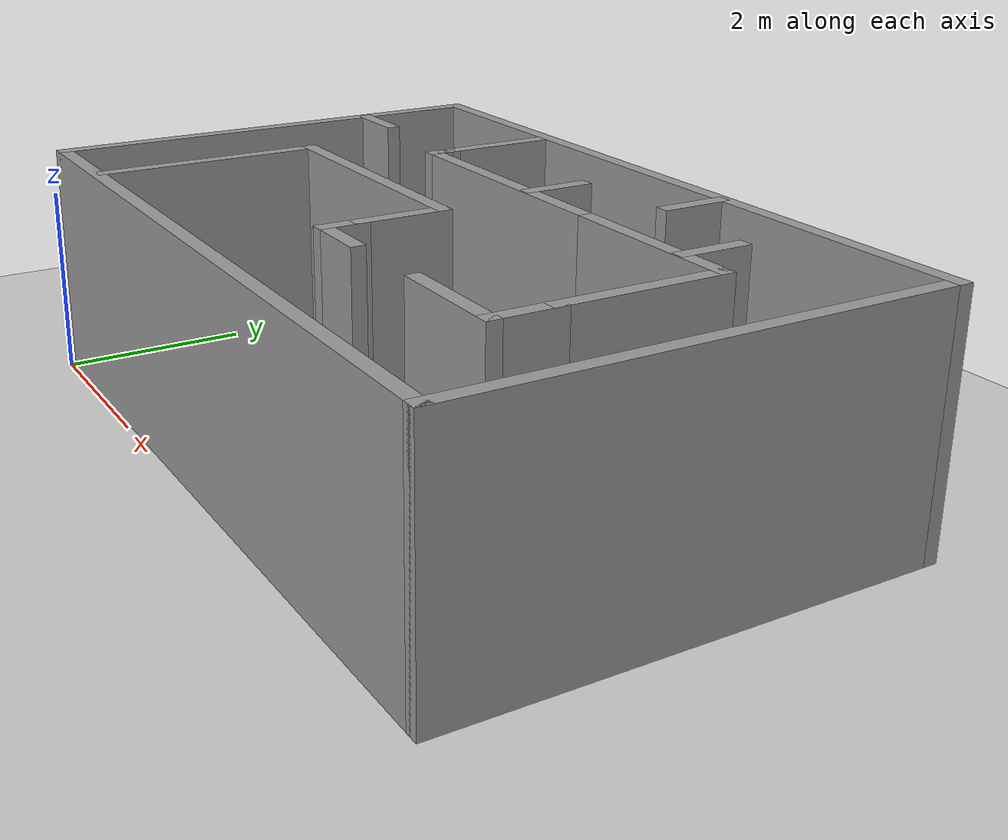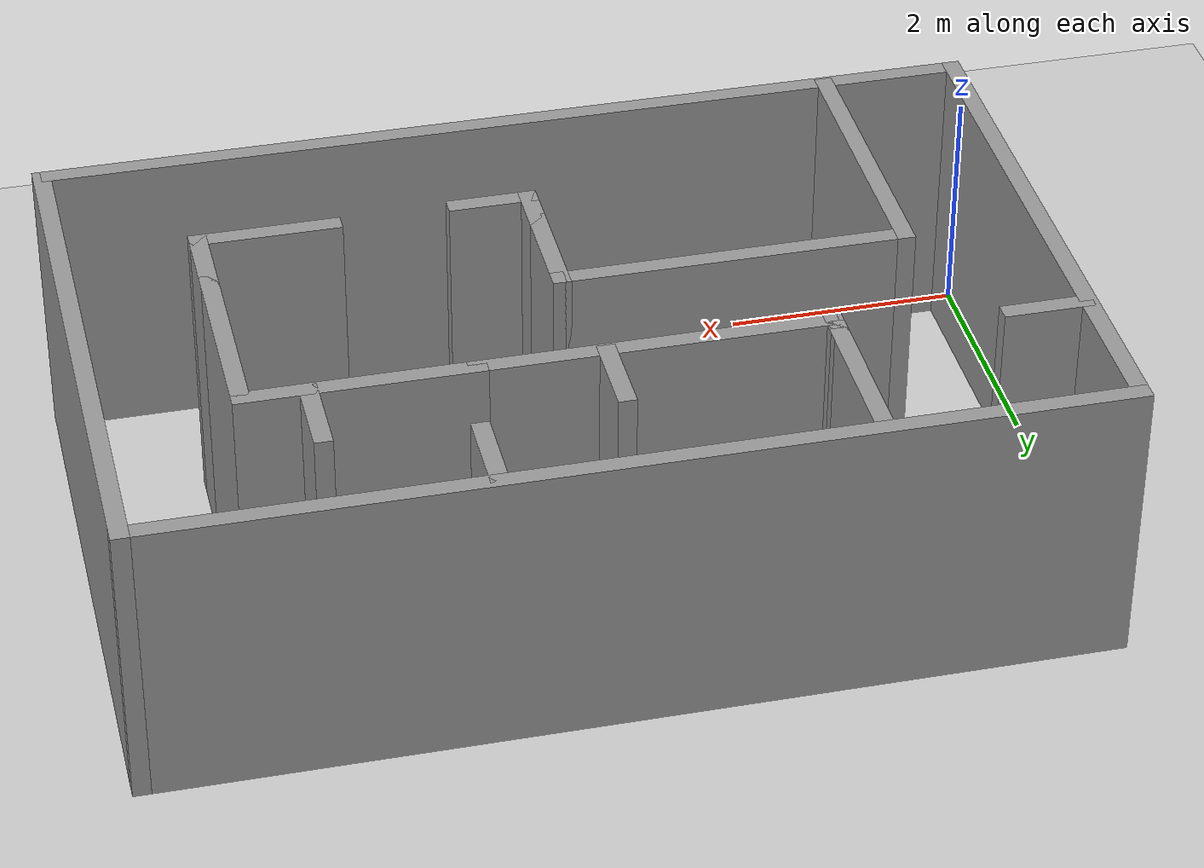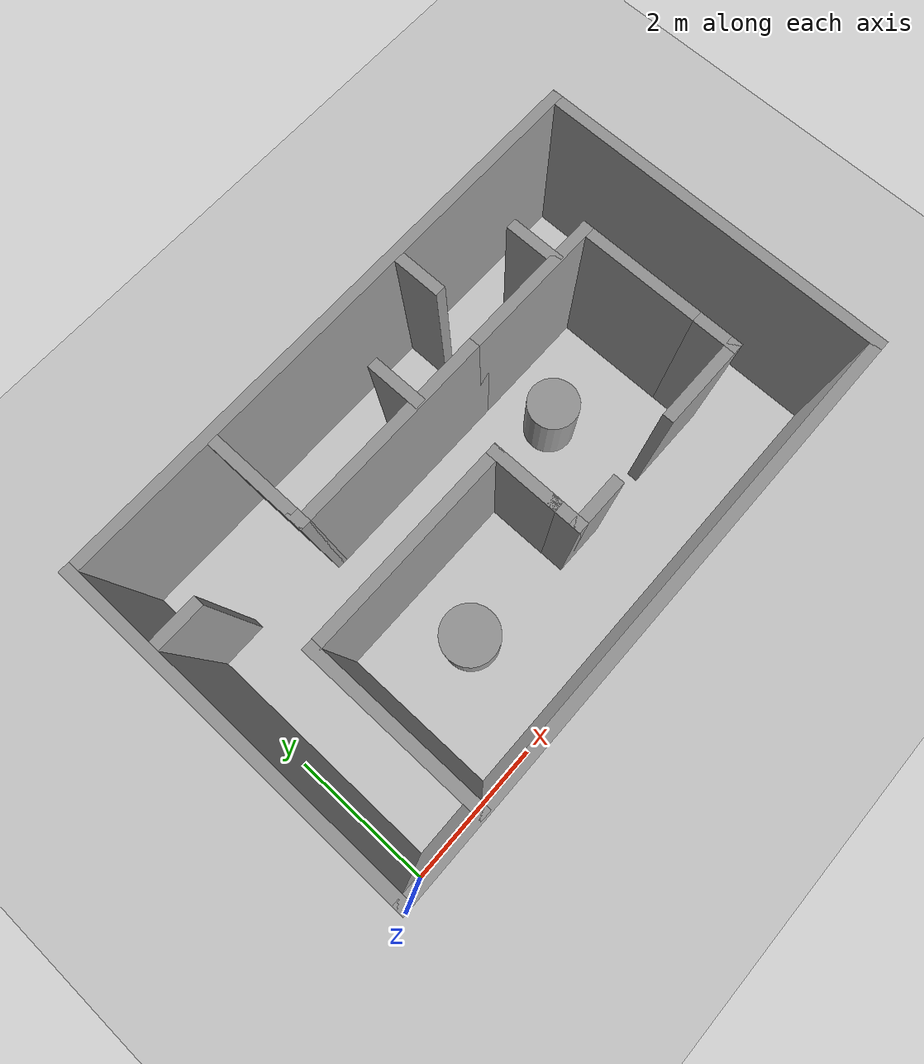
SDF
<sdf version="1.7">
 <world name="default">
  <light name="sun" type="directional">
   <pose>0 0 10 0 -0 0</pose>
   <diffuse>0.8 0.8 0.8 1</diffuse>
   <specular>0.2 0.2 0.2 1</specular>
   <attenuation>
    <range>1000</range>
    <constant>0.9</constant>
    <linear>0.01</linear>
    <quadratic>0.001</quadratic>
   </attenuation>
   <direction>-0.5 0.1 -0.9</direction>
   <spot><inner_angle>0</inner_angle><outer_angle>0</outer_angle><falloff>0</falloff></spot>
  </light>
  <model name="ground_plane">
   <static>1</static>
   <link name="link">
    <collision name="collision">
     <geometry><plane><normal>0 0 1</normal><size>100 100</size></plane></geometry>
     <surface>
      <contact><collide_bitmask>65535</collide_bitmask></contact>
      <friction><ode><mu>100</mu><mu2>50</mu2></ode></friction>
     </surface>
    </collision>
    <visual name="visual">
     <cast_shadows>0</cast_shadows>
     <geometry><plane><normal>0 0 1</normal><size>100 100</size></plane></geometry>
     <material>
      <script><uri>file://media/materials/scripts/gazebo.material</uri><name>Gazebo/Grey</name></script>
     </material>
    </visual>
   </link>
  </model>
  <gravity>0 0 -9.8</gravity>
  <magnetic_field>6e-06 2.3e-05 -4.2e-05</magnetic_field>
  <atmosphere type="adiabatic"/>
  <physics type="ode">
   <max_step_size>0.001</max_step_size>
   <real_time_factor>1</real_time_factor>
   <real_time_update_rate>1000</real_time_update_rate>
  </physics>
  <scene><ambient>0.4 0.4 0.4 1</ambient><background>0.7 0.7 0.7 1</background><shadows>1</shadows></scene>
  <spherical_coordinates>
   <surface_model>EARTH_WGS84</surface_model>
   <latitude_deg>0</latitude_deg>
   <longitude_deg>0</longitude_deg>
   <elevation>0</elevation>
   <heading_deg>0</heading_deg>
  </spherical_coordinates>
  <model name="maze">
   <pose>4.06804 4.30363 0 0 -0 0</pose>
   <link name="Wall_0">
    <collision name="Wall_0_Collision">
     <geometry><box><size>5 0.15 2.5</size></box></geometry>
     <pose>0 0 1.25 0 -0 0</pose>
    </collision>
    <visual name="Wall_0_Visual">
     <pose>0 0 1.25 0 -0 0</pose>
     <geometry><box><size>5 0.15 2.5</size></box></geometry>
     <material>
      <script><uri>file://media/materials/scripts/gazebo.material</uri><name>Gazebo/Grey</name></script>
      <ambient>1 1 1 1</ambient>
     </material>
     <meta><layer>0</layer></meta>
    </visual>
    <pose>-3.925 -1.7725 0 0 -0 -1.5708</pose>
   </link>
   <link name="Wall_1">
    <collision name="Wall_1_Collision">
     <geometry><box><size>8 0.15 2.5</size></box></geometry>
     <pose>0 0 1.25 0 -0 0</pose>
    </collision>
    <visual name="Wall_1_Visual">
     <pose>0 0 1.25 0 -0 0</pose>
     <geometry><box><size>8 0.15 2.5</size></box></geometry>
     <material>
      <script><uri>file://media/materials/scripts/gazebo.material</uri><name>Gazebo/Grey</name></script>
      <ambient>1 1 1 1</ambient>
     </material>
     <meta><layer>0</layer></meta>
    </visual>
    <pose>0 -4.1975 0 0 -0 0</pose>
   </link>
   <link name="Wall_10">
    <collision name="Wall_10_Collision">
     <geometry><box><size>0.25 0.15 2.5</size></box></geometry>
     <pose>0 0 1.25 0 -0 0</pose>
    </collision>
    <visual name="Wall_10_Visual">
     <pose>0 0 1.25 0 -0 0</pose>
     <geometry><box><size>0.25 0.15 2.5</size></box></geometry>
     <material>
      <script><uri>file://media/materials/scripts/gazebo.material</uri><name>Gazebo/Grey</name></script>
      <ambient>1 1 1 1</ambient>
     </material>
     <meta><layer>0</layer></meta>
    </visual>
    <pose>-1.89639 -0.640567 0 0 -0 -1.5708</pose>
   </link>
   <link name="Wall_11">
    <collision name="Wall_11_Collision">
     <geometry><box><size>0.25 0.15 2.5</size></box></geometry>
     <pose>0 0 1.25 0 -0 0</pose>
    </collision>
    <visual name="Wall_11_Visual">
     <pose>0 0 1.25 0 -0 0</pose>
     <geometry><box><size>0.25 0.15 2.5</size></box></geometry>
     <material>
      <script><uri>file://media/materials/scripts/gazebo.material</uri><name>Gazebo/Grey</name></script>
      <ambient>1 1 1 1</ambient>
     </material>
     <meta><layer>0</layer></meta>
    </visual>
    <pose>-1.89639 -0.740567 0 0 -0 -1.5708</pose>
   </link>
   <link name="Wall_12">
    <collision name="Wall_12_Collision">
     <geometry><box><size>3 0.15 2.5</size></box></geometry>
     <pose>0 0 1.25 0 -0 0</pose>
    </collision>
    <visual name="Wall_12_Visual">
     <pose>0 0 1.25 0 -0 0</pose>
     <geometry><box><size>3 0.15 2.5</size></box></geometry>
     <material>
      <script><uri>file://media/materials/scripts/gazebo.material</uri><name>Gazebo/Grey</name></script>
      <ambient>1 1 1 1</ambient>
     </material>
     <meta><layer>0</layer></meta>
    </visual>
    <pose>-0.471389 -0.790567 0 0 -0 0</pose>
   </link>
   <link name="Wall_17">
    <collision name="Wall_17_Collision">
     <geometry><box><size>2.5 0.15 2.5</size></box></geometry>
     <pose>0 0 1.25 0 -0 0</pose>
    </collision>
    <visual name="Wall_17_Visual">
     <pose>0 0 1.25 0 -0 0</pose>
     <geometry><box><size>2.5 0.15 2.5</size></box></geometry>
     <material>
      <script><uri>file://media/materials/scripts/gazebo.material</uri><name>Gazebo/Grey</name></script>
      <ambient>1 1 1 1</ambient>
     </material>
     <meta><layer>0</layer></meta>
    </visual>
    <pose>-2.78139 -3.00203 0 0 -0 1.5708</pose>
   </link>
   <link name="Wall_18">
    <collision name="Wall_18_Collision">
     <geometry><box><size>3 0.15 2.5</size></box></geometry>
     <pose>0 0 1.25 0 -0 0</pose>
    </collision>
    <visual name="Wall_18_Visual">
     <pose>0 0 1.25 0 -0 0</pose>
     <geometry><box><size>3 0.15 2.5</size></box></geometry>
     <material>
      <script><uri>file://media/materials/scripts/gazebo.material</uri><name>Gazebo/Grey</name></script>
      <ambient>1 1 1 1</ambient>
     </material>
     <meta><layer>0</layer></meta>
    </visual>
    <pose>-1.35639 -1.82703 0 0 -0 0</pose>
   </link>
   <link name="Wall_2">
    <collision name="Wall_2_Collision">
     <geometry><box><size>5 0.15 2.5</size></box></geometry>
     <pose>0 0 1.25 0 -0 0</pose>
    </collision>
    <visual name="Wall_2_Visual">
     <pose>0 0 1.25 0 -0 0</pose>
     <geometry><box><size>5 0.15 2.5</size></box></geometry>
     <material>
      <script><uri>file://media/materials/scripts/gazebo.material</uri><name>Gazebo/Grey</name></script>
      <ambient>1 1 1 1</ambient>
     </material>
     <meta><layer>0</layer></meta>
    </visual>
    <pose>3.925 -1.7725 0 0 -0 1.5708</pose>
   </link>
   <link name="Wall_20">
    <collision name="Wall_20_Collision">
     <geometry><box><size>1 0.15 2.5</size></box></geometry>
     <pose>0 0 1.25 0 -0 0</pose>
    </collision>
    <visual name="Wall_20_Visual">
     <pose>0 0 1.25 0 -0 0</pose>
     <geometry><box><size>1 0.15 2.5</size></box></geometry>
     <material>
      <script><uri>file://media/materials/scripts/gazebo.material</uri><name>Gazebo/Grey</name></script>
      <ambient>1 1 1 1</ambient>
     </material>
     <meta><layer>0</layer></meta>
    </visual>
    <pose>0.068614 -2.25203 0 0 -0 -1.5708</pose>
   </link>
   <link name="Wall_22">
    <collision name="Wall_22_Collision">
     <geometry><box><size>2 0.15 2.5</size></box></geometry>
     <pose>0 0 1.25 0 -0 0</pose>
    </collision>
    <visual name="Wall_22_Visual">
     <pose>0 0 1.25 0 -0 0</pose>
     <geometry><box><size>2 0.15 2.5</size></box></geometry>
     <material>
      <script><uri>file://media/materials/scripts/gazebo.material</uri><name>Gazebo/Grey</name></script>
      <ambient>1 1 1 1</ambient>
     </material>
     <meta><layer>0</layer></meta>
    </visual>
    <pose>1.87861 -0.790567 0 0 -0 0</pose>
   </link>
   <link name="Wall_23">
    <collision name="Wall_23_Collision">
     <geometry><box><size>1.75 0.15 2.5</size></box></geometry>
     <pose>0 0 1.25 0 -0 0</pose>
    </collision>
    <visual name="Wall_23_Visual">
     <pose>0 0 1.25 0 -0 0</pose>
     <geometry><box><size>1.75 0.15 2.5</size></box></geometry>
     <material>
      <script><uri>file://media/materials/scripts/gazebo.material</uri><name>Gazebo/Grey</name></script>
      <ambient>1 1 1 1</ambient>
     </material>
     <meta><layer>0</layer></meta>
    </visual>
    <pose>2.80361 -1.59057 0 0 -0 -1.5708</pose>
   </link>
   <link name="Wall_25">
    <collision name="Wall_25_Collision">
     <geometry><box><size>0.75 0.15 2.5</size></box></geometry>
     <pose>0 0 1.25 0 -0 0</pose>
    </collision>
    <visual name="Wall_25_Visual">
     <pose>0 0 1.25 0 -0 0</pose>
     <geometry><box><size>0.75 0.15 2.5</size></box></geometry>
     <material>
      <script><uri>file://media/materials/scripts/gazebo.material</uri><name>Gazebo/Grey</name></script>
      <ambient>1 1 1 1</ambient>
     </material>
     <meta><layer>0</layer></meta>
    </visual>
    <pose>2.80361 -2.69057 0 0 -0 -1.5708</pose>
   </link>
   <link name="Wall_26">
    <collision name="Wall_26_Collision">
     <geometry><box><size>1.25 0.15 2.5</size></box></geometry>
     <pose>0 0 1.25 0 -0 0</pose>
    </collision>
    <visual name="Wall_26_Visual">
     <pose>0 0 1.25 0 -0 0</pose>
     <geometry><box><size>1.25 0.15 2.5</size></box></geometry>
     <material>
      <script><uri>file://media/materials/scripts/gazebo.material</uri><name>Gazebo/Grey</name></script>
      <ambient>1 1 1 1</ambient>
     </material>
     <meta><layer>0</layer></meta>
    </visual>
    <pose>2.25361 -2.99057 0 0 -0 3.14159</pose>
   </link>
   <link name="Wall_28">
    <collision name="Wall_28_Collision">
     <geometry><box><size>0.75 0.15 2.5</size></box></geometry>
     <pose>0 0 1.25 0 -0 0</pose>
    </collision>
    <visual name="Wall_28_Visual">
     <pose>0 0 1.25 0 -0 0</pose>
     <geometry><box><size>0.75 0.15 2.5</size></box></geometry>
     <material>
      <script><uri>file://media/materials/scripts/gazebo.material</uri><name>Gazebo/Grey</name></script>
      <ambient>1 1 1 1</ambient>
     </material>
     <meta><layer>0</layer></meta>
    </visual>
    <pose>-0.069352 -0.471137 0 0 -0 1.5708</pose>
   </link>
   <link name="Wall_3">
    <collision name="Wall_3_Collision">
     <geometry><box><size>8 0.15 2.5</size></box></geometry>
     <pose>0 0 1.25 0 -0 0</pose>
    </collision>
    <visual name="Wall_3_Visual">
     <pose>0 0 1.25 0 -0 0</pose>
     <geometry><box><size>8 0.15 2.5</size></box></geometry>
     <material>
      <script><uri>file://media/materials/scripts/gazebo.material</uri><name>Gazebo/Grey</name></script>
      <ambient>1 1 1 1</ambient>
     </material>
     <meta><layer>0</layer></meta>
    </visual>
    <pose>0 0.6525 0 0 -0 3.14159</pose>
   </link>
   <link name="Wall_30">
    <collision name="Wall_30_Collision">
     <geometry><box><size>0.75 0.15 2.5</size></box></geometry>
     <pose>0 0 1.25 0 -0 0</pose>
    </collision>
    <visual name="Wall_30_Visual">
     <pose>0 0 1.25 0 -0 0</pose>
     <geometry><box><size>0.75 0.15 2.5</size></box></geometry>
     <material>
      <script><uri>file://media/materials/scripts/gazebo.material</uri><name>Gazebo/Grey</name></script>
      <ambient>1 1 1 1</ambient>
     </material>
     <meta><layer>0</layer></meta>
    </visual>
    <pose>1.08546 0.296898 0 0 -0 -1.5708</pose>
   </link>
   <link name="Wall_32">
    <collision name="Wall_32_Collision">
     <geometry><box><size>0.75 0.15 2.5</size></box></geometry>
     <pose>0 0 1.25 0 -0 0</pose>
    </collision>
    <visual name="Wall_32_Visual">
     <pose>0 0 1.25 0 -0 0</pose>
     <geometry><box><size>0.75 0.15 2.5</size></box></geometry>
     <material>
      <script><uri>file://media/materials/scripts/gazebo.material</uri><name>Gazebo/Grey</name></script>
      <ambient>1 1 1 1</ambient>
     </material>
     <meta><layer>0</layer></meta>
    </visual>
    <pose>2.28017 -0.471722 0 0 -0 1.5708</pose>
   </link>
   <link name="Wall_36">
    <collision name="Wall_36_Collision">
     <geometry><box><size>0.5 0.15 2.5</size></box></geometry>
     <pose>0 0 1.25 0 -0 0</pose>
    </collision>
    <visual name="Wall_36_Visual">
     <pose>0 0 1.25 0 -0 0</pose>
     <geometry><box><size>0.5 0.15 2.5</size></box></geometry>
     <material>
      <script><uri>file://media/materials/scripts/gazebo.material</uri><name>Gazebo/Grey</name></script>
      <ambient>1 1 1 1</ambient>
     </material>
     <meta><layer>0</layer></meta>
    </visual>
    <pose>0.068614 -2.85203 0 0 -0 -1.5708</pose>
   </link>
   <link name="Wall_37">
    <collision name="Wall_37_Collision">
     <geometry><box><size>0.75 0.15 2.5</size></box></geometry>
     <pose>0 0 1.25 0 -0 0</pose>
    </collision>
    <visual name="Wall_37_Visual">
     <pose>0 0 1.25 0 -0 0</pose>
     <geometry><box><size>0.75 0.15 2.5</size></box></geometry>
     <material>
      <script><uri>file://media/materials/scripts/gazebo.material</uri><name>Gazebo/Grey</name></script>
      <ambient>1 1 1 1</ambient>
     </material>
     <meta><layer>0</layer></meta>
    </visual>
    <pose>0.368614 -3.02703 0 0 -0 0</pose>
   </link>
   <link name="Wall_39">
    <collision name="Wall_39_Collision">
     <geometry><box><size>0.75 0.15 2.5</size></box></geometry>
     <pose>0 0 1.25 0 -0 0</pose>
    </collision>
    <visual name="Wall_39_Visual">
     <pose>0 0 1.25 0 -0 0</pose>
     <geometry><box><size>0.75 0.15 2.5</size></box></geometry>
     <material>
      <script><uri>file://media/materials/scripts/gazebo.material</uri><name>Gazebo/Grey</name></script>
      <ambient>1 1 1 1</ambient>
     </material>
     <meta><layer>0</layer></meta>
    </visual>
    <pose>-3.58587 -0.592012 0 0 -0 0</pose>
   </link>
   <link name="Wall_9">
    <collision name="Wall_9_Collision">
     <geometry><box><size>1.25 0.15 2.5</size></box></geometry>
     <pose>0 0 1.25 0 -0 0</pose>
    </collision>
    <visual name="Wall_9_Visual">
     <pose>0 0 1.25 0 -0 0</pose>
     <geometry><box><size>1.25 0.15 2.5</size></box></geometry>
     <material>
      <script><uri>file://media/materials/scripts/gazebo.material</uri><name>Gazebo/Grey</name></script>
      <ambient>1 1 1 1</ambient>
     </material>
     <meta><layer>0</layer></meta>
    </visual>
    <pose>-1.89639 -0.040567 0 0 -0 -1.5708</pose>
   </link>
   <static>1</static>
  </model>
  <model name="unit_cylinder">
   <pose>5.46873 2.64029 0.499998 1e-06 1e-06 0</pose>
   <link name="link">
    <inertial>
     <mass>1</mass>
     <inertia><ixx>0.145833</ixx><ixy>0</ixy><ixz>0</ixz><iyy>0.145833</iyy><iyz>0</iyz><izz>0.125</izz></inertia>
    </inertial>
    <collision name="collision">
     <geometry><cylinder><radius>0.353794</radius><length>1</length></cylinder></geometry>
    </collision>
    <visual name="visual">
     <geometry><cylinder><radius>0.353794</radius><length>1</length></cylinder></geometry>
     <material>
      <script><name>Gazebo/Grey</name><uri>file://media/materials/scripts/gazebo.material</uri></script>
     </material>
    </visual>
   </link>
  </model>
  <model name="unit_cylinder_0">
   <pose>2.55916 1.46083 0.499997 -1e-06 -1e-06 0</pose>
   <link name="link">
    <inertial>
     <mass>1</mass>
     <inertia><ixx>0.145833</ixx><ixy>0</ixy><ixz>0</ixz><iyy>0.145833</iyy><iyz>0</iyz><izz>0.125</izz></inertia>
    </inertial>
    <collision name="collision">
     <geometry><cylinder><radius>0.39013</radius><length>1</length></cylinder></geometry>
    </collision>
    <visual name="visual">
     <geometry><cylinder><radius>0.39013</radius><length>1</length></cylinder></geometry>
     <material>
      <script><name>Gazebo/Grey</name><uri>file://media/materials/scripts/gazebo.material</uri></script>
     </material>
    </visual>
   </link>
  </model>
 </world>
</sdf>
